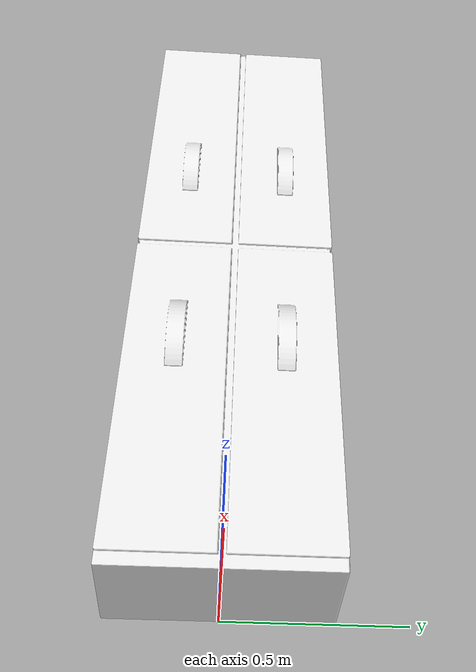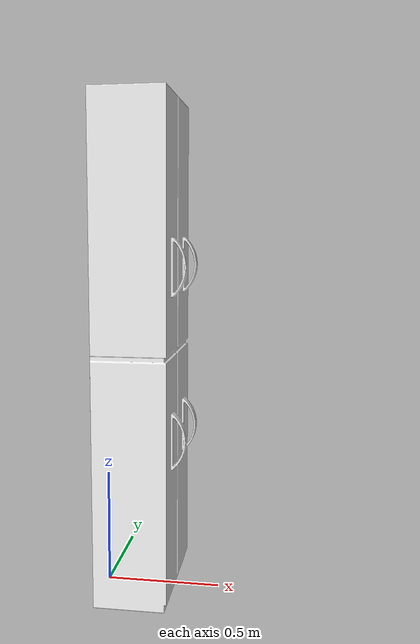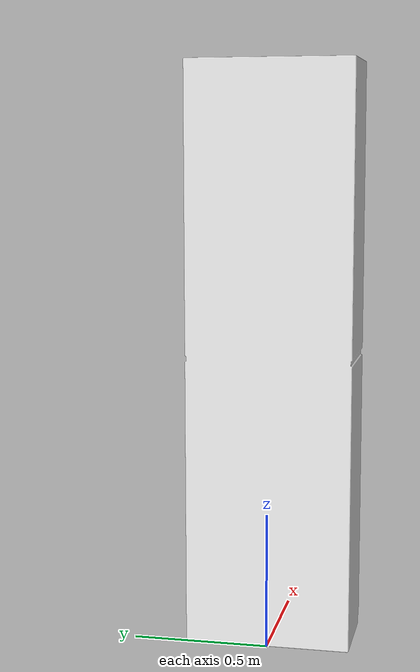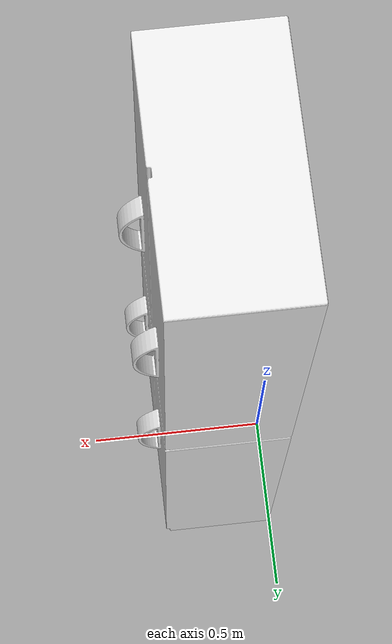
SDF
<?xml version='1.0'?>
<sdf version="1.5">
  <model name="cabinet"> <!-- Very important to change-->
    <static>true</static>
    <pose>0 0 0 0 0 0</pose> <!-- Translation: X Y Z and Rotation: Roll Pitch Yaw (In Radian)-->
    <link name="body">

    <inertial> >
      <mass>80</mass>
        <inertia>
        <ixx>0</ixx>
        <ixy>0</ixy>
        <ixz>0</ixz>
        <iyy>0</iyy>
        <iyz>0</iyz>
        <izz>0</izz>
      </inertia>
    </inertial>

       <collision name="collision"> <!-- You can use mesh like below -->
        <geometry>
          <mesh>
             <uri>/home/sorox23/robotic_ws/master_thesis_ws/src/property_based_tester/environment/models/cabinet/meshes/cabinet.stl</uri>
             <scale>0.001 0.001 0.001</scale>
          </mesh>
        </geometry>
      </collision>

      <visual name="visual">
        <geometry>
          <mesh>
             <uri>/home/sorox23/robotic_ws/master_thesis_ws/src/property_based_tester/environment/models/cabinet/meshes/cabinet.stl</uri>
             <scale>0.001 0.001 0.001</scale>
          </mesh>
        </geometry>

        <material>
          <script>
             <uri>/home/sorox23/robotic_ws/master_thesis_ws/src/property_based_tester/environment/models/cabinet/materials/scripts</uri>
             <uri>/home/sorox23/robotic_ws/master_thesis_ws/src/property_based_tester/environment/models/cabinet/materials/textures</uri>
             <name>PR2/White</name>
          </script>
        </material>
      </visual>
    </link>
  </model>
</sdf>
